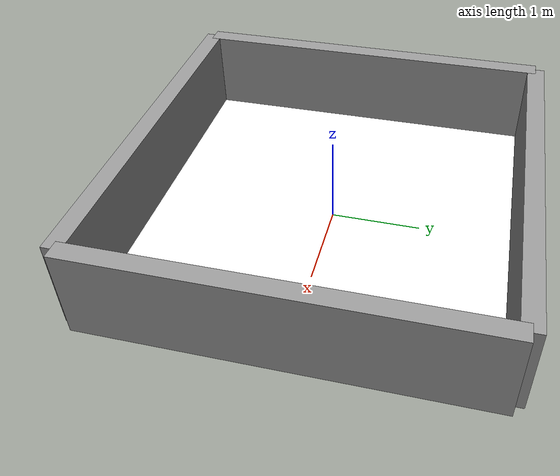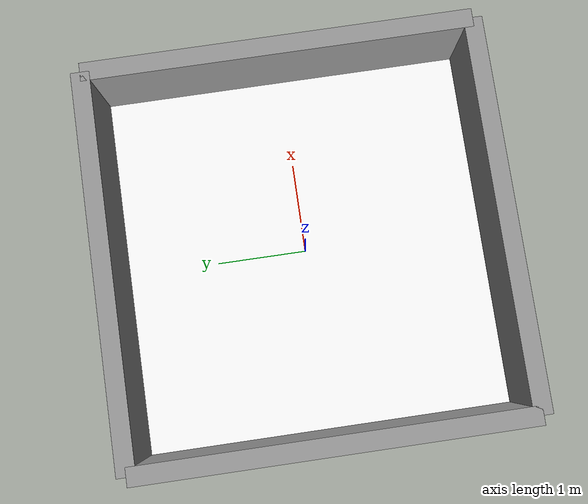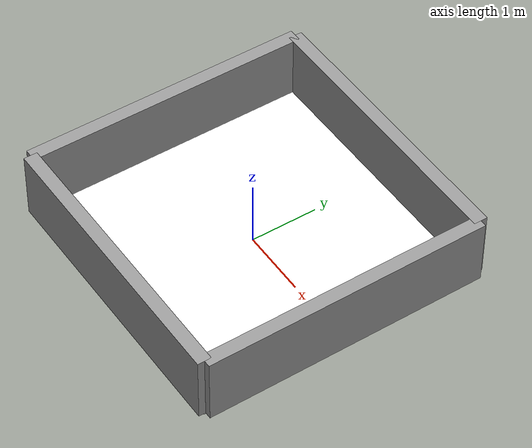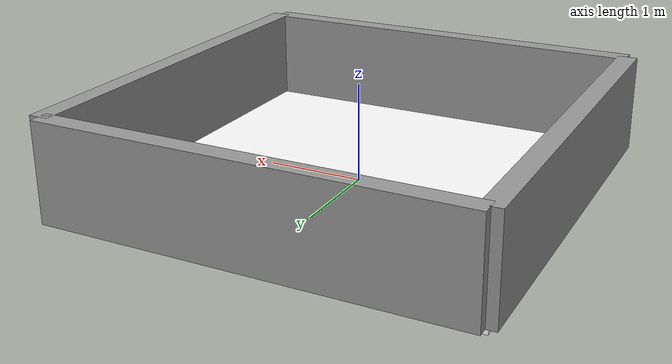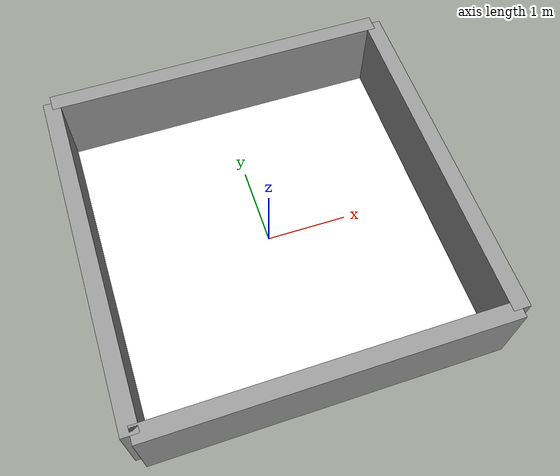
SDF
<sdf version="1.7">
 <world name="texture_ground_with_walls_world">
  <light name="sun" type="directional">
   <pose>0 0 10 0 -0 0</pose>
   <diffuse>0.8 0.8 0.8 1</diffuse>
   <specular>0.2 0.2 0.2 1</specular>
   <attenuation>
    <range>1000</range>
    <constant>0.9</constant>
    <linear>0.01</linear>
    <quadratic>0.001</quadratic>
   </attenuation>
   <direction>-0.5 0.1 -0.9</direction>
   <spot><inner_angle>0</inner_angle><outer_angle>0</outer_angle><falloff>0</falloff></spot>
  </light>
  <physics name="default_physics" default="1" type="ode">
   <real_time_update_rate>1000</real_time_update_rate>
   <max_step_size>0.001</max_step_size>
   <real_time_factor>1</real_time_factor>
  </physics>
  <model name="ground_plane">
   <static>1</static>
   <pose>-0.023385 -0.008977 0 0 -0 1.5708</pose>
   <link name="ground_link">
    <collision name="ground_collision">
     <geometry><box><size>4.2 4.2 0.1</size></box></geometry>
     <surface><friction><ode><mu>1</mu><mu2>1</mu2></ode></friction></surface>
    </collision>
    <visual name="ground_visual">
     <geometry><box><size>4.2 4.2 0.1</size></box></geometry>
     <material>
      <script>
       <uri>model://zhsq_floor/materials/scripts</uri>
       <uri>model://zhsq_floor/materials/textures/</uri>
       <name>floor/Image</name>
      </script>
      <ambient>1 1 1 1</ambient>
      <diffuse>1 1 1 1</diffuse>
      <specular>0.1 0.1 0.1 1</specular>
      <emissive>0 0 0 1</emissive>
     </material>
    </visual>
   </link>
  </model>
  <model name="walls">
   <static>1</static>
   <pose>-0 -0 0 0 -0 1.5708</pose>
   <link name="north_wall">
    <pose>0 2.1 0.5 0 -0 0</pose>
    <collision name="north_wall_collision"><geometry><box><size>4.2 0.2 1</size></box></geometry></collision>
    <visual name="north_wall_visual">
     <geometry><box><size>4.2 0.2 1</size></box></geometry>
     <material>
      <script><uri>file://media/materials/scripts/gazebo.material</uri><name>Gazebo/Grey</name></script>
     </material>
    </visual>
   </link>
   <link name="south_wall">
    <pose>0 -2.1 0.5 0 -0 0</pose>
    <collision name="south_wall_collision"><geometry><box><size>4.2 0.2 1</size></box></geometry></collision>
    <visual name="south_wall_visual">
     <geometry><box><size>4.2 0.2 1</size></box></geometry>
     <material>
      <script><uri>file://media/materials/scripts/gazebo.material</uri><name>Gazebo/Grey</name></script>
     </material>
    </visual>
   </link>
   <link name="east_wall">
    <pose>2.1 0 0.5 0 -0 0</pose>
    <collision name="east_wall_collision"><geometry><box><size>0.2 4.2 1</size></box></geometry></collision>
    <visual name="east_wall_visual">
     <geometry><box><size>0.2 4.2 1</size></box></geometry>
     <material>
      <script><uri>file://media/materials/scripts/gazebo.material</uri><name>Gazebo/Grey</name></script>
     </material>
    </visual>
   </link>
   <link name="west_wall">
    <pose>-2.1 0 0.5 0 -0 0</pose>
    <collision name="west_wall_collision"><geometry><box><size>0.2 4.2 1</size></box></geometry></collision>
    <visual name="west_wall_visual">
     <geometry><box><size>0.2 4.2 1</size></box></geometry>
     <material>
      <script><uri>file://media/materials/scripts/gazebo.material</uri><name>Gazebo/Grey</name></script>
     </material>
    </visual>
   </link>
   <joint name="north_south_joint" type="fixed"><parent>north_wall</parent><child>south_wall</child></joint>
   <joint name="north_east_joint" type="fixed"><parent>north_wall</parent><child>east_wall</child></joint>
   <joint name="north_west_joint" type="fixed"><parent>north_wall</parent><child>west_wall</child></joint>
  </model>
  <gravity>0 0 -9.8</gravity>
  <magnetic_field>6e-06 2.3e-05 -4.2e-05</magnetic_field>
  <atmosphere type="adiabatic"/>
  <scene><ambient>0.8 0.8 0.8 1</ambient><background>0.7 0.7 0.7 1</background><shadows>1</shadows></scene>
  <spherical_coordinates>
   <surface_model>EARTH_WGS84</surface_model>
   <latitude_deg>0</latitude_deg>
   <longitude_deg>0</longitude_deg>
   <elevation>0</elevation>
   <heading_deg>0</heading_deg>
  </spherical_coordinates>
  <model name="wall">
   <pose>0.370047 -0.278255 0 0 -0 0</pose>
   <link name="Wall_0">
    <collision name="Wall_0_Collision">
     <geometry><box><size>2 0.15 1</size></box></geometry>
     <pose>0 0 0.5 0 -0 0</pose>
    </collision>
    <pose>-0.775 1.596 0 0 -0 0</pose>
   </link>
   <link name="Wall_11">
    <collision name="Wall_11_Collision">
     <geometry><box><size>2.79 0.15 1</size></box></geometry>
     <pose>0 0 0.5 0 -0 0</pose>
    </collision>
    <pose>0.33 0.285 0 0 -0 -1.5708</pose>
   </link>
   <link name="Wall_13">
    <collision name="Wall_13_Collision">
     <geometry><box><size>0.290357 0.15 1</size></box></geometry>
     <pose>0 0 0.5 0 -0 0</pose>
    </collision>
    <pose>-0.18 1.146 0 0 -0 3.14159</pose>
   </link>
   <link name="Wall_18">
    <collision name="Wall_18_Collision">
     <geometry><box><size>0.5 0.15 1</size></box></geometry>
     <pose>0 0 0.5 0 -0 0</pose>
    </collision>
    <pose>0.155 -1.035 0 0 -0 3.14159</pose>
   </link>
   <link name="Wall_21">
    <collision name="Wall_21_Collision">
     <geometry><box><size>2.5 0.15 1</size></box></geometry>
     <pose>0 0 0.5 0 -0 0</pose>
    </collision>
    <pose>-0.02 0.13 0 0 -0 -1.5708</pose>
   </link>
   <link name="Wall_23">
    <collision name="Wall_23_Collision">
     <geometry><box><size>1 0.15 1</size></box></geometry>
     <pose>0 0 0.5 0 -0 0</pose>
    </collision>
    <pose>-1.285 0.385 0 0 -0 0</pose>
   </link>
   <link name="Wall_25">
    <collision name="Wall_25_Collision">
     <geometry><box><size>1 0.15 1</size></box></geometry>
     <pose>0 0 0.5 0 -0 0</pose>
    </collision>
    <pose>-1.285 -1.055 0 0 -0 0</pose>
   </link>
   <link name="Wall_28">
    <collision name="Wall_28_Collision">
     <geometry><box><size>1.5 0.15 1</size></box></geometry>
     <pose>0 0 0.5 0 -0 0</pose>
    </collision>
    <pose>-1.72 -0.31 0 0 -0 -1.5708</pose>
   </link>
   <link name="Wall_3">
    <collision name="Wall_3_Collision">
     <geometry><box><size>0.6 0.15 1</size></box></geometry>
     <pose>0 0 0.5 0 -0 0</pose>
    </collision>
    <pose>-1.7 1.371 0 0 -0 -1.5708</pose>
   </link>
   <link name="Wall_31">
    <collision name="Wall_31_Collision">
     <geometry><box><size>1.5 0.15 1</size></box></geometry>
     <pose>0 0 0.5 0 -0 0</pose>
    </collision>
    <pose>-0.87 -0.36 0 0 -0 -1.5708</pose>
   </link>
   <link name="Wall_33">
    <collision name="Wall_33_Collision">
     <geometry><box><size>3.4 0.15 1</size></box></geometry>
     <pose>0 0 0.5 0 -0 0</pose>
    </collision>
    <pose>1.09 0 0 0 -0 -1.5708</pose>
   </link>
   <link name="Wall_37">
    <collision name="Wall_37_Collision">
     <geometry><box><size>0.75 0.15 1</size></box></geometry>
     <pose>0 0 0.5 0 -0 0</pose>
    </collision>
    <pose>1.42 1.615 0 0 -0 0</pose>
   </link>
   <link name="Wall_5">
    <collision name="Wall_5_Collision">
     <geometry><box><size>1.7405 0.15 1</size></box></geometry>
     <pose>0 0 0.5 0 -0 0</pose>
    </collision>
    <pose>-0.905 1.146 0 0 -0 0</pose>
   </link>
   <link name="Wall_7">
    <collision name="Wall_7_Collision">
     <geometry><box><size>0.25 0.15 1</size></box></geometry>
     <pose>0 0 0.5 0 -0 0</pose>
    </collision>
    <pose>0.2 1.596 0 0 -0 0</pose>
   </link>
   <static>1</static>
  </model>
 </world>
</sdf>
